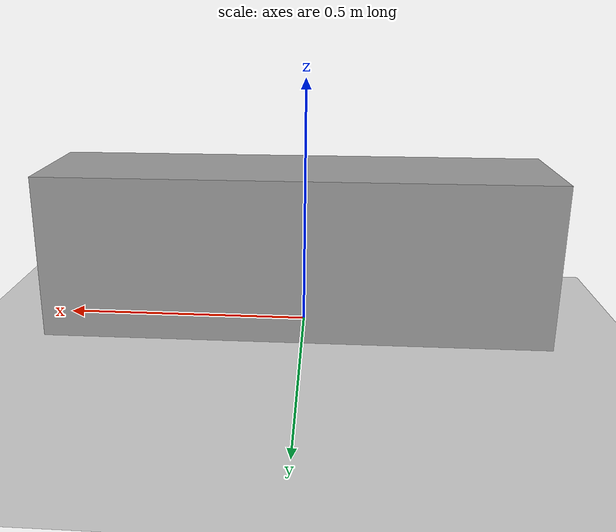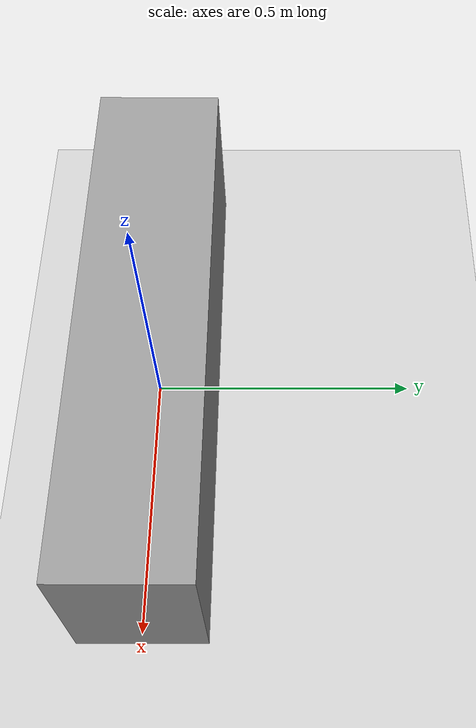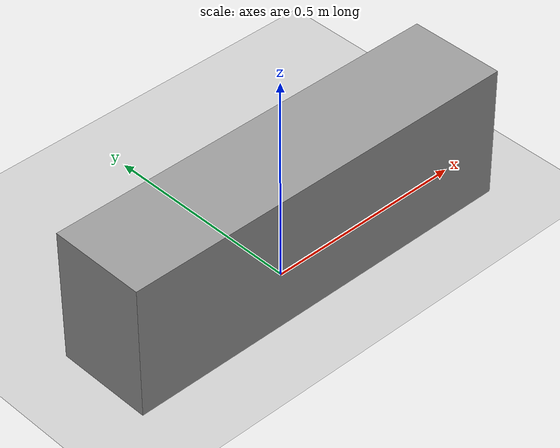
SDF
<sdf version="1.7">
 <world name="default">
  <model name="ground_plane">
   <static>1</static>
   <link name="link">
    <collision name="collision">
     <geometry><plane><normal>0 0 1</normal><size>100 100</size></plane></geometry>
     <surface>
      <contact><collide_bitmask>65535</collide_bitmask></contact>
      <friction><ode><mu>100</mu><mu2>50</mu2></ode></friction>
     </surface>
    </collision>
    <visual name="visual">
     <cast_shadows>0</cast_shadows>
     <geometry><plane><normal>0 0 1</normal><size>100 100</size></plane></geometry>
     <material>
      <script><uri>file://media/materials/scripts/gazebo.material</uri><name>Gazebo/Grey</name></script>
     </material>
    </visual>
   </link>
  </model>
  <model name="unit_box">
   <pose>0.016929 0.001602 0.162565 1.9e-05 -0.000158 1.8e-05</pose>
   <link name="link">
    <inertial>
     <mass>1</mass>
     <inertia>
      <ixx>0.166667</ixx>
      <ixy>0</ixy>
      <ixz>0</ixz>
      <iyy>0.166667</iyy>
      <iyz>0</iyz>
      <izz>0.166667</izz>
     </inertia>
    </inertial>
    <collision name="collision"><geometry><box><size>1 0.234689 0.325284</size></box></geometry></collision>
    <visual name="visual">
     <geometry><box><size>1 0.234689 0.325284</size></box></geometry>
     <material>
      <script><name>Gazebo/Grey</name><uri>file://media/materials/scripts/gazebo.material</uri></script>
     </material>
    </visual>
   </link>
  </model>
 </world>
</sdf>
